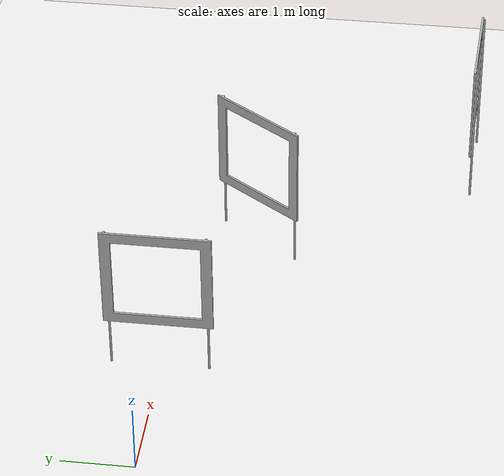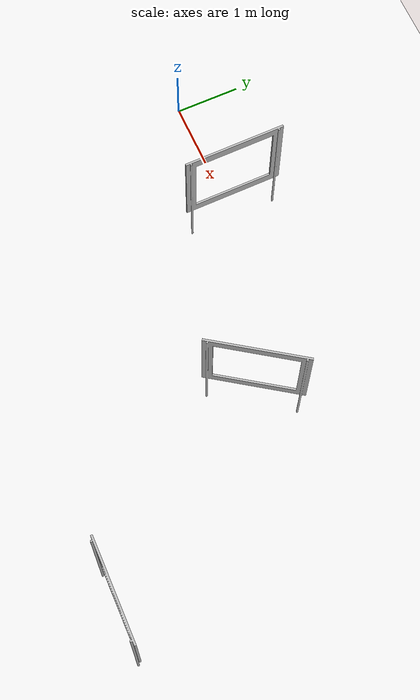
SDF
<sdf version="1.6">
 <world name="default">
  <light name="sun" type="directional">
   <pose>0 0 10 0 -0 0</pose>
   <diffuse>0.8 0.8 0.8 1</diffuse>
   <specular>0.2 0.2 0.2 1</specular>
   <attenuation>
    <range>1000</range>
    <constant>0.9</constant>
    <linear>0.01</linear>
    <quadratic>0.001</quadratic>
   </attenuation>
   <direction>-0.5 0.1 -0.9</direction>
  </light>
  <include><name>gate_0</name><uri>model://gate</uri><pose>2 0 0 0 0 0</pose></include>
  <include><name>gate_1</name><uri>model://gate</uri><pose>4.870 -1 0 0 0 -0.61</pose></include>
  <include><name>gate_2</name><uri>model://gate</uri><pose>7 -4 0 0 0 -1.6</pose></include>
  <model name="ground_plane">
   <static>1</static>
   <link name="link">
    <collision name="collision">
     <geometry><plane><normal>0 0 1</normal><size>100 100</size></plane></geometry>
     <surface><friction><ode><mu>100</mu><mu2>50</mu2></ode></friction></surface>
    </collision>
    <visual name="visual">
     <cast_shadows>0</cast_shadows>
     <geometry><plane><normal>0 0 1</normal><size>100 100</size></plane></geometry>
     <material>
      <script><uri>file://media/materials/scripts/gazebo.material</uri><name>Gazebo/WhiteGlow</name></script>
     </material>
    </visual>
   </link>
  </model>
  <gravity>0 0 -9.8</gravity>
  <magnetic_field>6e-06 2.3e-05 -4.2e-05</magnetic_field>
  <atmosphere type="adiabatic"/>
  <physics name="default_physics" default="0" type="ode">
   <max_step_size>0.001</max_step_size>
   <real_time_factor>1</real_time_factor>
   <real_time_update_rate>1000</real_time_update_rate>
  </physics>
  <scene><ambient>0.4 0.4 0.4 1</ambient><background>0.7 0.7 0.7 1</background><shadows>1</shadows></scene>
  <spherical_coordinates>
   <surface_model>EARTH_WGS84</surface_model>
   <latitude_deg>0</latitude_deg>
   <longitude_deg>0</longitude_deg>
   <elevation>0</elevation>
   <heading_deg>0</heading_deg>
  </spherical_coordinates>
 </world>
</sdf>

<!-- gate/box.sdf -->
<sdf version="1.4">
  <model name="my_model">
    <pose>0 0 0.5 0 0 0</pose>
    <static>true</static>
    <link name="link">
	<collision name="collision">
	<geometry>
      <mesh>
        <scale>1.5 1.5 1.5</scale>
		<uri>model://gate/meshes/gate_adjusted.dae</uri>
	  </mesh>
        </geometry>
	</collision>
      <visual name="visual">
        <geometry>
          <mesh>
        <scale>1.5 1.5 1.5</scale>
		<uri>model://gate/meshes/gate_adjusted.dae</uri>
	  </mesh>
        </geometry>
      </visual>
    </link>
  </model>
</sdf>
